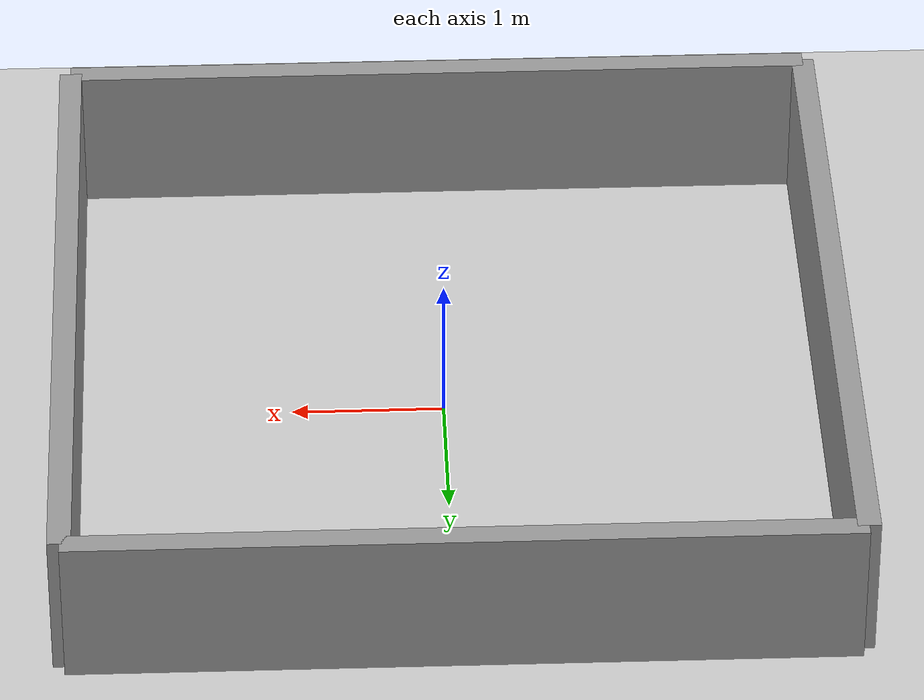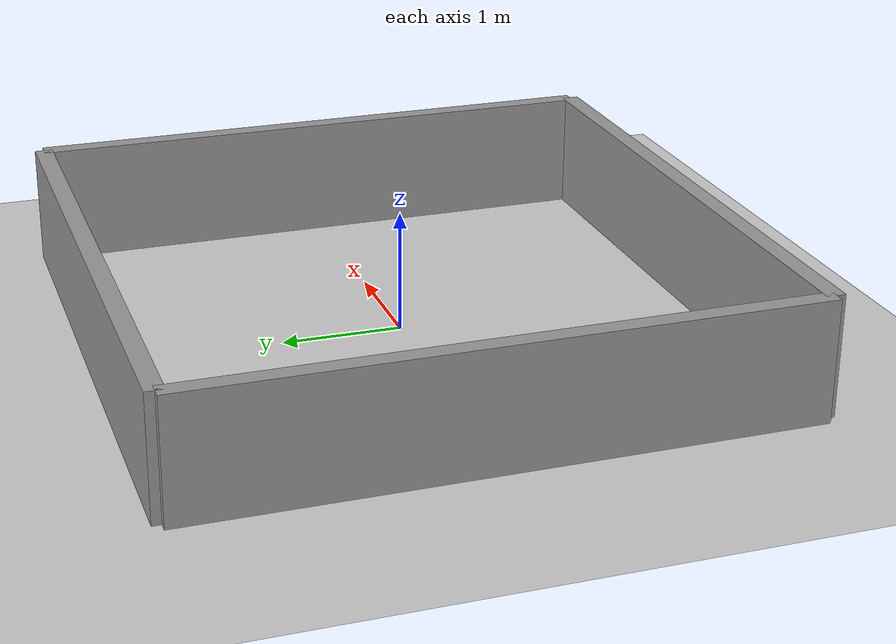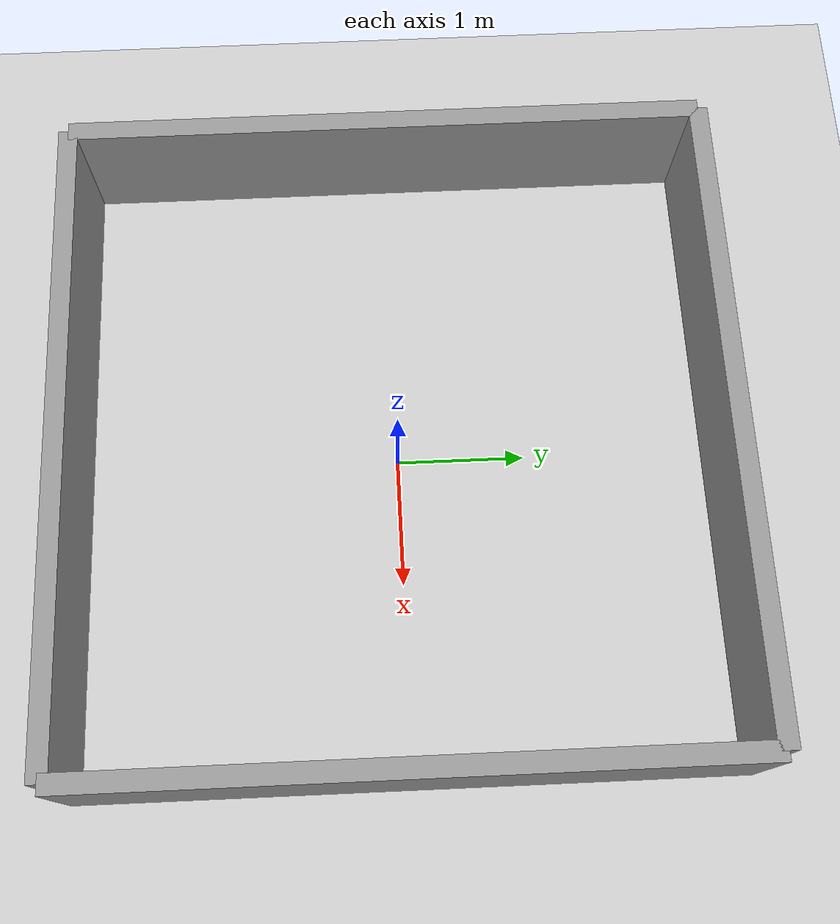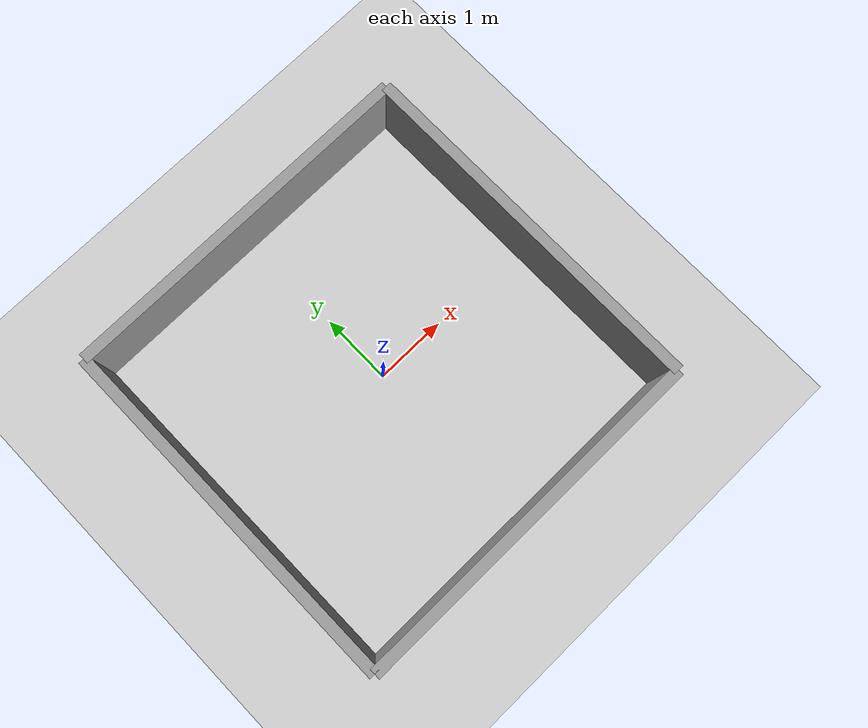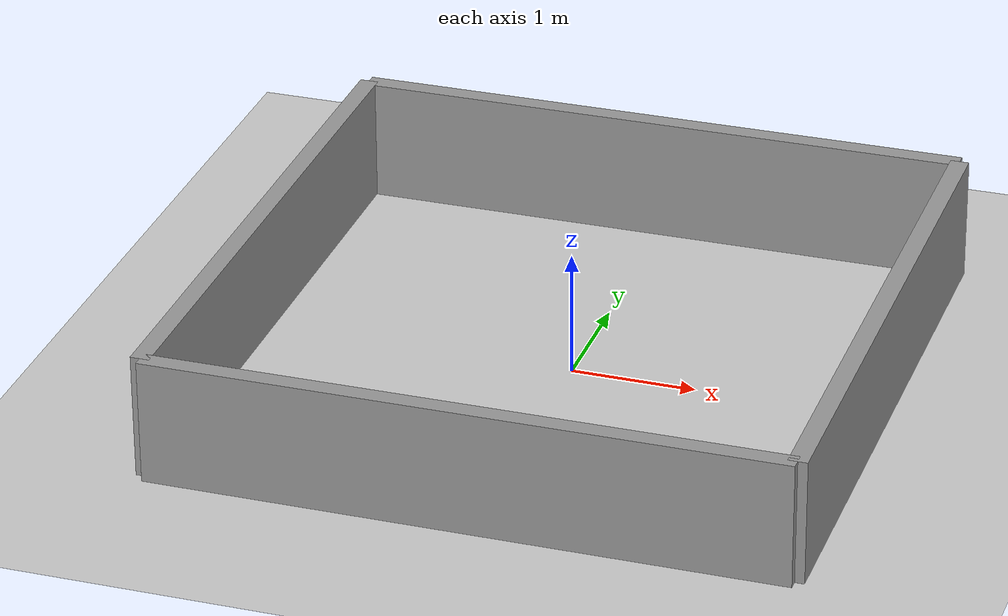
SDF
<?xml version="1.0"?>
<sdf version="1.6">
  <world name="default">

    <!-- Ground Plane and Sun -->
    <include>
      <uri>model://ground_plane</uri>
    </include>
    <include>
      <uri>model://sun</uri>
    </include>

    <!-- Scene Settings -->
    <scene>
      <shadows>false</shadows>
    </scene>

    <!-- GUI Settings -->
    <gui fullscreen='0'>
      <camera name='user_camera'>
        <pose frame=''>2.0 -5.0 4.0 0 0.68 1.9</pose>
        <view_controller>orbit</view_controller>
        <projection_type>perspective</projection_type>
      </camera>
    </gui>

    <!-- Physics Settings -->
    <physics type="ode">
      <real_time_update_rate>50</real_time_update_rate>
      <max_step_size>0.020</max_step_size>
      <real_time_factor>1</real_time_factor>
      <gravity>0 0 -9.81</gravity>
      <magnetic_field>5.0e-06 2.3e-05 -4.2e-05</magnetic_field>
      <ode>
        <solver>
          <type>quick</type>
          <iters>150</iters>
          <precon_iters>0</precon_iters>
          <sor>1.4</sor>
          <use_dynamic_moi_rescaling>1</use_dynamic_moi_rescaling>
        </solver>
        <constraints>
          <cfm>0.00001</cfm>
          <erp>0.2</erp>
          <contact_max_correcting_vel>2000</contact_max_correcting_vel>
          <contact_surface_layer>0.01</contact_surface_layer>
        </constraints>
      </ode>
    </physics>

    <!-- Walls -->
    <model name='Untitled'>
      <pose>-0.042 0 0 0 -0 0</pose>

      <link name='Wall_1'>
        <collision name='Wall_1_Collision'>
          <geometry>
            <box>
              <size>5 0.15 1</size>
            </box>
          </geometry>
          <pose>0 0 0.5 0 -0 0</pose>
        </collision>
        <visual name='Wall_1_Visual'>
          <pose>0 0 0.5 0 -0 0</pose>
          <geometry>
            <box>
              <size>5 0.15 1</size>
            </box>
          </geometry>
          <material>
            <script>
              <uri>file://media/materials/scripts/gazebo.material</uri>
              <name>Gazebo/Grey</name>
            </script>
            <ambient>1 1 1 1</ambient>
          </material>
        </visual>
        <pose>0 -2.5 0 0 -0 0</pose>
      </link>

      <link name='Wall_2'>
        <collision name='Wall_2_Collision'>
          <geometry>
            <box>
              <size>5 0.15 1</size>
            </box>
          </geometry>
          <pose>0 0 0.5 0 -0 0</pose>
        </collision>
        <visual name='Wall_2_Visual'>
          <pose>0 0 0.5 0 -0 0</pose>
          <geometry>
            <box>
              <size>5 0.15 1</size>
            </box>
          </geometry>
          <material>
            <script>
              <uri>file://media/materials/scripts/gazebo.material</uri>
              <name>Gazebo/Grey</name>
            </script>
            <ambient>1 1 1 1</ambient>
          </material>
        </visual>
        <pose>2.5 0 0 0 -0 1.5708</pose>
      </link>

      <link name='Wall_3'>
        <collision name='Wall_3_Collision'>
          <geometry>
            <box>
              <size>5 0.15 1</size>
            </box>
          </geometry>
          <pose>0 0 0.5 0 -0 0</pose>
        </collision>
        <visual name='Wall_3_Visual'>
          <pose>0 0 0.5 0 -0 0</pose>
          <geometry>
            <box>
              <size>5 0.15 1</size>
            </box>
          </geometry>
          <material>
            <script>
              <uri>file://media/materials/scripts/gazebo.material</uri>
              <name>Gazebo/Grey</name>
            </script>
            <ambient>1 1 1 1</ambient>
          </material>
        </visual>
        <pose>0 2.5 0 0 -0 3.14159</pose>
      </link>

      <link name='Wall_4'>
        <collision name='Wall_4_Collision'>
          <geometry>
            <box>
              <size>5 0.15 1</size>
            </box>
          </geometry>
          <pose>0 0 0.5 0 -0 0</pose>
        </collision>
        <visual name='Wall_4_Visual'>
          <pose>0 0 0.5 0 -0 0</pose>
          <geometry>
            <box>
              <size>5 0.15 1</size>
            </box>
          </geometry>
          <material>
            <script>
              <uri>file://media/materials/scripts/gazebo.material</uri>
              <name>Gazebo/Grey</name>
            </script>
            <ambient>1 1 1 1</ambient>
          </material>
        </visual>
        <pose>-2.5 0 0 0 -0 -1.5708</pose>
      </link>

      <static>1</static>
    </model>

  </world>
</sdf>
